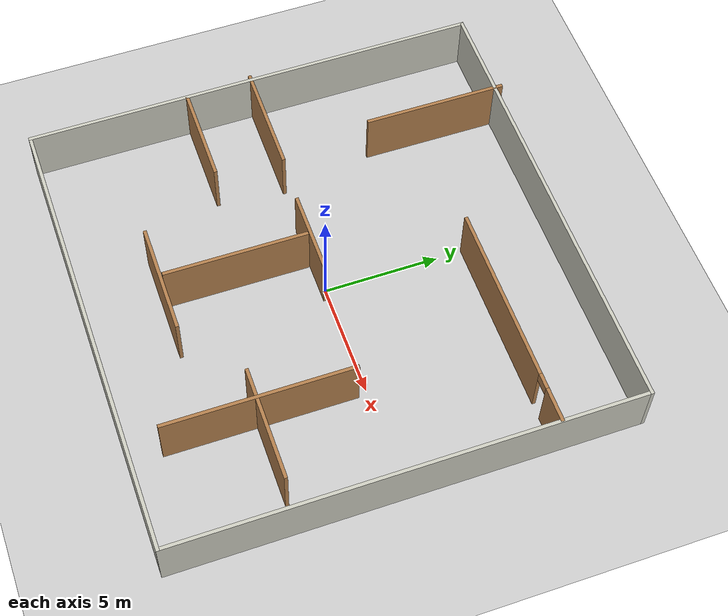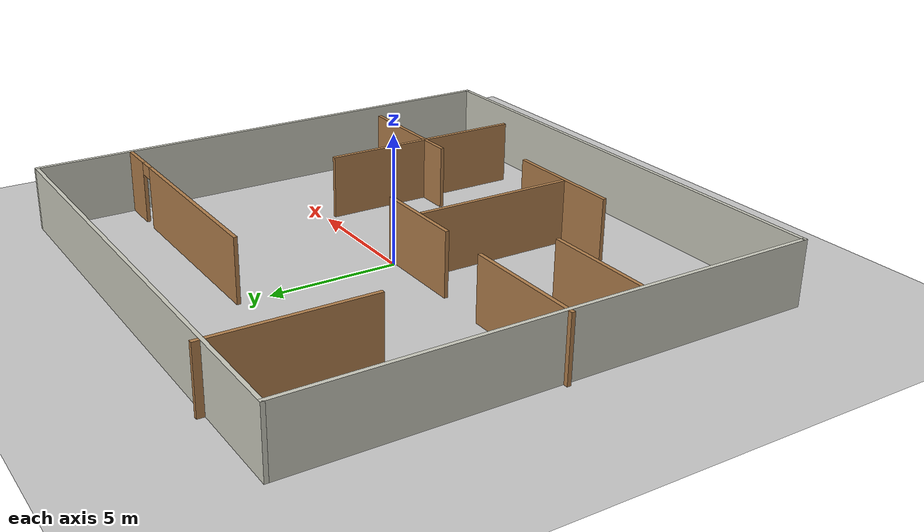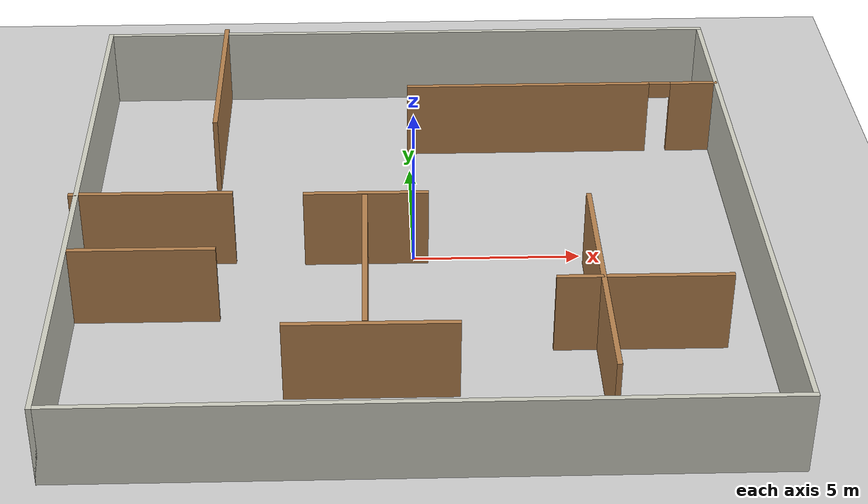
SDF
<sdf version="1.4">
<world name="default">
    <gravity>0 0 -9.8</gravity>

    <physics name="custom_physics_profile" type="ode" default="true">
      <ode>
        <solver>
          <type>quick</type>
          <iters>100</iters>
        </solver>
      </ode>
    </physics>

    <include>
        <uri>model://ground_plane</uri>
    </include>

    <include>
        <uri>model://Map</uri>
        <pose>0 0 0 0 0 0</pose>
    </include>
</world>
</sdf>

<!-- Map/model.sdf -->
<sdf version='1.6'>
  <model name='MAP'>
    <link name='Wall_19'>
      <pose frame=''>4.957 6.17289 0 0 -0 0</pose>
      <self_collide>0</self_collide>
      <enable_wind>0</enable_wind>
      <kinematic>0</kinematic>
      <visual name='Wall_19_Visual_0'>
        <pose frame=''>-1.09816 0 1.25 0 -0 0</pose>
        <geometry>
          <box>
            <size>7.80368 0.15 2.5</size>
          </box>
        </geometry>
        <material>
          <script>
            <uri>file://media/materials/scripts/gazebo.material</uri>
            <name>Gazebo/WoodFloor</name>
          </script>
          <ambient>1 1 1 1</ambient>
        </material>
        <meta>
          <layer>0</layer>
        </meta>
        <transparency>0</transparency>
        <cast_shadows>1</cast_shadows>
      </visual>
      <visual name='Wall_19_Visual_1'>
        <pose frame=''>4.24478 0 1.25 0 -0 0</pose>
        <geometry>
          <box>
            <size>1.51045 0.15 2.5</size>
          </box>
        </geometry>
        <material>
          <script>
            <uri>file://media/materials/scripts/gazebo.material</uri>
            <name>Gazebo/WoodFloor</name>
          </script>
          <ambient>1 1 1 1</ambient>
        </material>
        <meta>
          <layer>0</layer>
        </meta>
        <transparency>0</transparency>
        <cast_shadows>1</cast_shadows>
      </visual>
      <visual name='Wall_19_Visual_2'>
        <pose frame=''>3.14662 0 2.25 0 -0 0</pose>
        <geometry>
          <box>
            <size>0.685868 0.15 0.5</size>
          </box>
        </geometry>
        <material>
          <script>
            <uri>file://media/materials/scripts/gazebo.material</uri>
            <name>Gazebo/WoodFloor</name>
          </script>
          <ambient>1 1 1 1</ambient>
        </material>
        <meta>
          <layer>0</layer>
        </meta>
        <transparency>0</transparency>
        <cast_shadows>1</cast_shadows>
      </visual>
      <collision name='Wall_19_Collision_0'>
        <laser_retro>0</laser_retro>
        <max_contacts>10</max_contacts>
        <pose frame=''>-1.09816 0 1.25 0 -0 0</pose>
        <geometry>
          <box>
            <size>7.80368 0.15 2.5</size>
          </box>
        </geometry>
        <surface>
          <friction>
            <ode>
              <mu>1</mu>
              <mu2>1</mu2>
              <fdir1>0 0 0</fdir1>
              <slip1>0</slip1>
              <slip2>0</slip2>
            </ode>
            <torsional>
              <coefficient>1</coefficient>
              <patch_radius>0</patch_radius>
              <surface_radius>0</surface_radius>
              <use_patch_radius>1</use_patch_radius>
              <ode>
                <slip>0</slip>
              </ode>
            </torsional>
          </friction>
          <bounce>
            <restitution_coefficient>0</restitution_coefficient>
            <threshold>1e+06</threshold>
          </bounce>
          <contact>
            <collide_without_contact>0</collide_without_contact>
            <collide_without_contact_bitmask>1</collide_without_contact_bitmask>
            <collide_bitmask>1</collide_bitmask>
            <ode>
              <soft_cfm>0</soft_cfm>
              <soft_erp>0.2</soft_erp>
              <kp>1e+13</kp>
              <kd>1</kd>
              <max_vel>0.01</max_vel>
              <min_depth>0</min_depth>
            </ode>
            <bullet>
              <split_impulse>1</split_impulse>
              <split_impulse_penetration_threshold>-0.01</split_impulse_penetration_threshold>
              <soft_cfm>0</soft_cfm>
              <soft_erp>0.2</soft_erp>
              <kp>1e+13</kp>
              <kd>1</kd>
            </bullet>
          </contact>
        </surface>
      </collision>
      <collision name='Wall_19_Collision_1'>
        <laser_retro>0</laser_retro>
        <max_contacts>10</max_contacts>
        <pose frame=''>4.24478 0 1.25 0 -0 0</pose>
        <geometry>
          <box>
            <size>1.51045 0.15 2.5</size>
          </box>
        </geometry>
        <surface>
          <friction>
            <ode>
              <mu>1</mu>
              <mu2>1</mu2>
              <fdir1>0 0 0</fdir1>
              <slip1>0</slip1>
              <slip2>0</slip2>
            </ode>
            <torsional>
              <coefficient>1</coefficient>
              <patch_radius>0</patch_radius>
              <surface_radius>0</surface_radius>
              <use_patch_radius>1</use_patch_radius>
              <ode>
                <slip>0</slip>
              </ode>
            </torsional>
          </friction>
          <bounce>
            <restitution_coefficient>0</restitution_coefficient>
            <threshold>1e+06</threshold>
          </bounce>
          <contact>
            <collide_without_contact>0</collide_without_contact>
            <collide_without_contact_bitmask>1</collide_without_contact_bitmask>
            <collide_bitmask>1</collide_bitmask>
            <ode>
              <soft_cfm>0</soft_cfm>
              <soft_erp>0.2</soft_erp>
              <kp>1e+13</kp>
              <kd>1</kd>
              <max_vel>0.01</max_vel>
              <min_depth>0</min_depth>
            </ode>
            <bullet>
              <split_impulse>1</split_impulse>
              <split_impulse_penetration_threshold>-0.01</split_impulse_penetration_threshold>
              <soft_cfm>0</soft_cfm>
              <soft_erp>0.2</soft_erp>
              <kp>1e+13</kp>
              <kd>1</kd>
            </bullet>
          </contact>
        </surface>
      </collision>
      <collision name='Wall_19_Collision_2'>
        <laser_retro>0</laser_retro>
        <max_contacts>10</max_contacts>
        <pose frame=''>3.14662 0 2.25 0 -0 0</pose>
        <geometry>
          <box>
            <size>0.685868 0.15 0.5</size>
          </box>
        </geometry>
        <surface>
          <friction>
            <ode>
              <mu>1</mu>
              <mu2>1</mu2>
              <fdir1>0 0 0</fdir1>
              <slip1>0</slip1>
              <slip2>0</slip2>
            </ode>
            <torsional>
              <coefficient>1</coefficient>
              <patch_radius>0</patch_radius>
              <surface_radius>0</surface_radius>
              <use_patch_radius>1</use_patch_radius>
              <ode>
                <slip>0</slip>
              </ode>
            </torsional>
          </friction>
          <bounce>
            <restitution_coefficient>0</restitution_coefficient>
            <threshold>1e+06</threshold>
          </bounce>
          <contact>
            <collide_without_contact>0</collide_without_contact>
            <collide_without_contact_bitmask>1</collide_without_contact_bitmask>
            <collide_bitmask>1</collide_bitmask>
            <ode>
              <soft_cfm>0</soft_cfm>
              <soft_erp>0.2</soft_erp>
              <kp>1e+13</kp>
              <kd>1</kd>
              <max_vel>0.01</max_vel>
              <min_depth>0</min_depth>
            </ode>
            <bullet>
              <split_impulse>1</split_impulse>
              <split_impulse_penetration_threshold>-0.01</split_impulse_penetration_threshold>
              <soft_cfm>0</soft_cfm>
              <soft_erp>0.2</soft_erp>
              <kp>1e+13</kp>
              <kd>1</kd>
            </bullet>
          </contact>
        </surface>
      </collision>
    </link>
    <link name='Wall_6'>
      <pose frame=''>-9.925 0 0 0 0 -1.5708</pose>
      <self_collide>0</self_collide>
      <enable_wind>0</enable_wind>
      <kinematic>0</kinematic>
      <visual name='Wall_6_Visual'>
        <pose frame=''>0 0 1.25 0 -0 0</pose>
        <geometry>
          <box>
            <size>20 0.15 2.5</size>
          </box>
        </geometry>
        <material>
          <script>
            <uri>file://media/materials/scripts/gazebo.material</uri>
            <name>Gazebo/PaintedWall</name>
          </script>
          <ambient>1 1 1 1</ambient>
        </material>
        <meta>
          <layer>0</layer>
        </meta>
        <transparency>0</transparency>
        <cast_shadows>1</cast_shadows>
      </visual>
      <collision name='Wall_6_Collision'>
        <laser_retro>0</laser_retro>
        <max_contacts>10</max_contacts>
        <pose frame=''>0 0 1.25 0 -0 0</pose>
        <geometry>
          <box>
            <size>20 0.15 2.5</size>
          </box>
        </geometry>
        <surface>
          <friction>
            <ode>
              <mu>1</mu>
              <mu2>1</mu2>
              <fdir1>0 0 0</fdir1>
              <slip1>0</slip1>
              <slip2>0</slip2>
            </ode>
            <torsional>
              <coefficient>1</coefficient>
              <patch_radius>0</patch_radius>
              <surface_radius>0</surface_radius>
              <use_patch_radius>1</use_patch_radius>
              <ode>
                <slip>0</slip>
              </ode>
            </torsional>
          </friction>
          <bounce>
            <restitution_coefficient>0</restitution_coefficient>
            <threshold>1e+06</threshold>
          </bounce>
          <contact>
            <collide_without_contact>0</collide_without_contact>
            <collide_without_contact_bitmask>1</collide_without_contact_bitmask>
            <collide_bitmask>1</collide_bitmask>
            <ode>
              <soft_cfm>0</soft_cfm>
              <soft_erp>0.2</soft_erp>
              <kp>1e+13</kp>
              <kd>1</kd>
              <max_vel>0.01</max_vel>
              <min_depth>0</min_depth>
            </ode>
            <bullet>
              <split_impulse>1</split_impulse>
              <split_impulse_penetration_threshold>-0.01</split_impulse_penetration_threshold>
              <soft_cfm>0</soft_cfm>
              <soft_erp>0.2</soft_erp>
              <kp>1e+13</kp>
              <kd>1</kd>
            </bullet>
          </contact>
        </surface>
      </collision>
    </link>
    <link name='Wall_7'>
      <pose frame=''>0 -9.925 0 0 -0 0</pose>
      <self_collide>0</self_collide>
      <enable_wind>0</enable_wind>
      <kinematic>0</kinematic>
      <visual name='Wall_7_Visual'>
        <pose frame=''>0 0 1.25 0 -0 0</pose>
        <geometry>
          <box>
            <size>20 0.15 2.5</size>
          </box>
        </geometry>
        <material>
          <script>
            <uri>file://media/materials/scripts/gazebo.material</uri>
            <name>Gazebo/PaintedWall</name>
          </script>
          <ambient>1 1 1 1</ambient>
        </material>
        <meta>
          <layer>0</layer>
        </meta>
        <transparency>0</transparency>
        <cast_shadows>1</cast_shadows>
      </visual>
      <collision name='Wall_7_Collision'>
        <laser_retro>0</laser_retro>
        <max_contacts>10</max_contacts>
        <pose frame=''>0 0 1.25 0 -0 0</pose>
        <geometry>
          <box>
            <size>20 0.15 2.5</size>
          </box>
        </geometry>
        <surface>
          <friction>
            <ode>
              <mu>1</mu>
              <mu2>1</mu2>
              <fdir1>0 0 0</fdir1>
              <slip1>0</slip1>
              <slip2>0</slip2>
            </ode>
            <torsional>
              <coefficient>1</coefficient>
              <patch_radius>0</patch_radius>
              <surface_radius>0</surface_radius>
              <use_patch_radius>1</use_patch_radius>
              <ode>
                <slip>0</slip>
              </ode>
            </torsional>
          </friction>
          <bounce>
            <restitution_coefficient>0</restitution_coefficient>
            <threshold>1e+06</threshold>
          </bounce>
          <contact>
            <collide_without_contact>0</collide_without_contact>
            <collide_without_contact_bitmask>1</collide_without_contact_bitmask>
            <collide_bitmask>1</collide_bitmask>
            <ode>
              <soft_cfm>0</soft_cfm>
              <soft_erp>0.2</soft_erp>
              <kp>1e+13</kp>
              <kd>1</kd>
              <max_vel>0.01</max_vel>
              <min_depth>0</min_depth>
            </ode>
            <bullet>
              <split_impulse>1</split_impulse>
              <split_impulse_penetration_threshold>-0.01</split_impulse_penetration_threshold>
              <soft_cfm>0</soft_cfm>
              <soft_erp>0.2</soft_erp>
              <kp>1e+13</kp>
              <kd>1</kd>
            </bullet>
          </contact>
        </surface>
      </collision>
    </link>
    <link name='Wall_8'>
      <pose frame=''>9.925 0 0 0 -0 1.5708</pose>
      <self_collide>0</self_collide>
      <enable_wind>0</enable_wind>
      <kinematic>0</kinematic>
      <visual name='Wall_8_Visual'>
        <pose frame=''>0 0 1.25 0 -0 0</pose>
        <geometry>
          <box>
            <size>20 0.15 2.5</size>
          </box>
        </geometry>
        <material>
          <script>
            <uri>file://media/materials/scripts/gazebo.material</uri>
            <name>Gazebo/PaintedWall</name>
          </script>
          <ambient>1 1 1 1</ambient>
        </material>
        <meta>
          <layer>0</layer>
        </meta>
        <transparency>0</transparency>
        <cast_shadows>1</cast_shadows>
      </visual>
      <collision name='Wall_8_Collision'>
        <laser_retro>0</laser_retro>
        <max_contacts>10</max_contacts>
        <pose frame=''>0 0 1.25 0 -0 0</pose>
        <geometry>
          <box>
            <size>20 0.15 2.5</size>
          </box>
        </geometry>
        <surface>
          <friction>
            <ode>
              <mu>1</mu>
              <mu2>1</mu2>
              <fdir1>0 0 0</fdir1>
              <slip1>0</slip1>
              <slip2>0</slip2>
            </ode>
            <torsional>
              <coefficient>1</coefficient>
              <patch_radius>0</patch_radius>
              <surface_radius>0</surface_radius>
              <use_patch_radius>1</use_patch_radius>
              <ode>
                <slip>0</slip>
              </ode>
            </torsional>
          </friction>
          <bounce>
            <restitution_coefficient>0</restitution_coefficient>
            <threshold>1e+06</threshold>
          </bounce>
          <contact>
            <collide_without_contact>0</collide_without_contact>
            <collide_without_contact_bitmask>1</collide_without_contact_bitmask>
            <collide_bitmask>1</collide_bitmask>
            <ode>
              <soft_cfm>0</soft_cfm>
              <soft_erp>0.2</soft_erp>
              <kp>1e+13</kp>
              <kd>1</kd>
              <max_vel>0.01</max_vel>
              <min_depth>0</min_depth>
            </ode>
            <bullet>
              <split_impulse>1</split_impulse>
              <split_impulse_penetration_threshold>-0.01</split_impulse_penetration_threshold>
              <soft_cfm>0</soft_cfm>
              <soft_erp>0.2</soft_erp>
              <kp>1e+13</kp>
              <kd>1</kd>
            </bullet>
          </contact>
        </surface>
      </collision>
    </link>
    <link name='Wall_9'>
      <pose frame=''>0 9.925 0 0 -0 3.14159</pose>
      <self_collide>0</self_collide>
      <enable_wind>0</enable_wind>
      <kinematic>0</kinematic>
      <visual name='Wall_9_Visual'>
        <pose frame=''>0 0 1.25 0 -0 0</pose>
        <geometry>
          <box>
            <size>20 0.15 2.5</size>
          </box>
        </geometry>
        <material>
          <script>
            <uri>file://media/materials/scripts/gazebo.material</uri>
            <name>Gazebo/PaintedWall</name>
          </script>
          <ambient>1 1 1 1</ambient>
        </material>
        <meta>
          <layer>0</layer>
        </meta>
        <transparency>0</transparency>
        <cast_shadows>1</cast_shadows>
      </visual>
      <collision name='Wall_9_Collision'>
        <laser_retro>0</laser_retro>
        <max_contacts>10</max_contacts>
        <pose frame=''>0 0 1.25 0 -0 0</pose>
        <geometry>
          <box>
            <size>20 0.15 2.5</size>
          </box>
        </geometry>
        <surface>
          <friction>
            <ode>
              <mu>1</mu>
              <mu2>1</mu2>
              <fdir1>0 0 0</fdir1>
              <slip1>0</slip1>
              <slip2>0</slip2>
            </ode>
            <torsional>
              <coefficient>1</coefficient>
              <patch_radius>0</patch_radius>
              <surface_radius>0</surface_radius>
              <use_patch_radius>1</use_patch_radius>
              <ode>
                <slip>0</slip>
              </ode>
            </torsional>
          </friction>
          <bounce>
            <restitution_coefficient>0</restitution_coefficient>
            <threshold>1e+06</threshold>
          </bounce>
          <contact>
            <collide_without_contact>0</collide_without_contact>
            <collide_without_contact_bitmask>1</collide_without_contact_bitmask>
            <collide_bitmask>1</collide_bitmask>
            <ode>
              <soft_cfm>0</soft_cfm>
              <soft_erp>0.2</soft_erp>
              <kp>1e+13</kp>
              <kd>1</kd>
              <max_vel>0.01</max_vel>
              <min_depth>0</min_depth>
            </ode>
            <bullet>
              <split_impulse>1</split_impulse>
              <split_impulse_penetration_threshold>-0.01</split_impulse_penetration_threshold>
              <soft_cfm>0</soft_cfm>
              <soft_erp>0.2</soft_erp>
              <kp>1e+13</kp>
              <kd>1</kd>
            </bullet>
          </contact>
        </surface>
      </collision>
    </link>
    <link name='Wall_9_clone'>
      <pose frame=''>-6.06665 7.15165 0 0 -0 1.56484</pose>
      <self_collide>0</self_collide>
      <enable_wind>0</enable_wind>
      <kinematic>0</kinematic>
      <inertial>
        <inertia>
          <ixx>0</ixx>
          <ixy>0</ixy>
          <ixz>0</ixz>
          <iyy>0</iyy>
          <iyz>0</iyz>
          <izz>0</izz>
        </inertia>
        <mass>0</mass>
        <pose frame=''>0 0 0 0 -0 0</pose>
      </inertial>
      <visual name='Wall_9_Visual'>
        <pose frame=''>0 0 1.25 0 -0 0</pose>
        <geometry>
          <box>
            <size>6.24861 0.15 2.5</size>
          </box>
        </geometry>
        <material>
          <script>
            <uri>file://media/materials/scripts/gazebo.material</uri>
            <name>Gazebo/WoodFloor</name>
          </script>
          <ambient>1 1 1 1</ambient>
          <shader type='pixel'/>
        </material>
        <meta>
          <layer>0</layer>
        </meta>
        <transparency>0</transparency>
        <cast_shadows>1</cast_shadows>
      </visual>
      <collision name='Wall_9_Collision'>
        <laser_retro>0</laser_retro>
        <max_contacts>10</max_contacts>
        <pose frame=''>0 0 1.25 0 -0 0</pose>
        <geometry>
          <box>
            <size>6.24861 0.15 2.5</size>
          </box>
        </geometry>
        <surface>
          <friction>
            <ode>
              <mu>1</mu>
              <mu2>1</mu2>
              <fdir1>0 0 0</fdir1>
              <slip1>0</slip1>
              <slip2>0</slip2>
            </ode>
            <torsional>
              <coefficient>1</coefficient>
              <patch_radius>0</patch_radius>
              <surface_radius>0</surface_radius>
              <use_patch_radius>1</use_patch_radius>
              <ode>
                <slip>0</slip>
              </ode>
            </torsional>
          </friction>
          <bounce>
            <restitution_coefficient>0</restitution_coefficient>
            <threshold>1e+06</threshold>
          </bounce>
          <contact>
            <collide_without_contact>0</collide_without_contact>
            <collide_without_contact_bitmask>1</collide_without_contact_bitmask>
            <collide_bitmask>1</collide_bitmask>
            <ode>
              <soft_cfm>0</soft_cfm>
              <soft_erp>0.2</soft_erp>
              <kp>1e+13</kp>
              <kd>1</kd>
              <max_vel>0.01</max_vel>
              <min_depth>0</min_depth>
            </ode>
            <bullet>
              <split_impulse>1</split_impulse>
              <split_impulse_penetration_threshold>-0.01</split_impulse_penetration_threshold>
              <soft_cfm>0</soft_cfm>
              <soft_erp>0.2</soft_erp>
              <kp>1e+13</kp>
              <kd>1</kd>
            </bullet>
          </contact>
        </surface>
      </collision>
    </link>
    <link name='Wall_9_clone_clone'>
      <pose frame=''>-7.74733 -0.023639 0 0 0 -0.003058</pose>
      <self_collide>0</self_collide>
      <enable_wind>0</enable_wind>
      <kinematic>0</kinematic>
      <inertial>
        <inertia>
          <ixx>0</ixx>
          <ixy>0</ixy>
          <ixz>0</ixz>
          <iyy>0</iyy>
          <iyz>0</iyz>
          <izz>0</izz>
        </inertia>
        <mass>0</mass>
        <pose frame=''>0 0 0 0 -0 0</pose>
      </inertial>
      <visual name='Wall_9_Visual'>
        <pose frame=''>0 0 1.25 0 -0 0</pose>
        <geometry>
          <box>
            <size>4.8352 0.15 2.5</size>
          </box>
        </geometry>
        <material>
          <script>
            <uri>file://media/materials/scripts/gazebo.material</uri>
            <name>Gazebo/WoodFloor</name>
          </script>
          <ambient>1 1 1 1</ambient>
          <shader type='pixel'/>
        </material>
        <meta>
          <layer>0</layer>
        </meta>
        <transparency>0</transparency>
        <cast_shadows>1</cast_shadows>
      </visual>
      <collision name='Wall_9_Collision'>
        <laser_retro>0</laser_retro>
        <max_contacts>10</max_contacts>
        <pose frame=''>0 0 1.25 0 -0 0</pose>
        <geometry>
          <box>
            <size>4.8352 0.15 2.5</size>
          </box>
        </geometry>
        <surface>
          <friction>
            <ode>
              <mu>1</mu>
              <mu2>1</mu2>
              <fdir1>0 0 0</fdir1>
              <slip1>0</slip1>
              <slip2>0</slip2>
            </ode>
            <torsional>
              <coefficient>1</coefficient>
              <patch_radius>0</patch_radius>
              <surface_radius>0</surface_radius>
              <use_patch_radius>1</use_patch_radius>
              <ode>
                <slip>0</slip>
              </ode>
            </torsional>
          </friction>
          <bounce>
            <restitution_coefficient>0</restitution_coefficient>
            <threshold>1e+06</threshold>
          </bounce>
          <contact>
            <collide_without_contact>0</collide_without_contact>
            <collide_without_contact_bitmask>1</collide_without_contact_bitmask>
            <collide_bitmask>1</collide_bitmask>
            <ode>
              <soft_cfm>0</soft_cfm>
              <soft_erp>0.2</soft_erp>
              <kp>1e+13</kp>
              <kd>1</kd>
              <max_vel>0.01</max_vel>
              <min_depth>0</min_depth>
            </ode>
            <bullet>
              <split_impulse>1</split_impulse>
              <split_impulse_penetration_threshold>-0.01</split_impulse_penetration_threshold>
              <soft_cfm>0</soft_cfm>
              <soft_erp>0.2</soft_erp>
              <kp>1e+13</kp>
              <kd>1</kd>
            </bullet>
          </contact>
        </surface>
      </collision>
    </link>
    <link name='Wall_9_clone_clone_0'>
      <pose frame=''>-1.46479 -3.36294 0 0 -0 1.56484</pose>
      <self_collide>0</self_collide>
      <enable_wind>0</enable_wind>
      <kinematic>0</kinematic>
      <inertial>
        <inertia>
          <ixx>0</ixx>
          <ixy>0</ixy>
          <ixz>0</ixz>
          <iyy>0</iyy>
          <iyz>0</iyz>
          <izz>0</izz>
        </inertia>
        <mass>0</mass>
        <pose frame=''>0 0 0 0 -0 0</pose>
      </inertial>
      <visual name='Wall_9_Visual'>
        <pose frame=''>0 0 1.25 0 -0 0</pose>
        <geometry>
          <box>
            <size>6.24861 0.15 2.5</size>
          </box>
        </geometry>
        <material>
          <script>
            <uri>file://media/materials/scripts/gazebo.material</uri>
            <name>Gazebo/WoodFloor</name>
          </script>
          <ambient>1 1 1 1</ambient>
          <shader type='pixel'/>
        </material>
        <meta>
          <layer>0</layer>
        </meta>
        <transparency>0</transparency>
        <cast_shadows>1</cast_shadows>
      </visual>
      <collision name='Wall_9_Collision'>
        <laser_retro>0</laser_retro>
        <max_contacts>10</max_contacts>
        <pose frame=''>0 0 1.25 0 -0 0</pose>
        <geometry>
          <box>
            <size>6.24861 0.15 2.5</size>
          </box>
        </geometry>
        <surface>
          <friction>
            <ode>
              <mu>1</mu>
              <mu2>1</mu2>
              <fdir1>0 0 0</fdir1>
              <slip1>0</slip1>
              <slip2>0</slip2>
            </ode>
            <torsional>
              <coefficient>1</coefficient>
              <patch_radius>0</patch_radius>
              <surface_radius>0</surface_radius>
              <use_patch_radius>1</use_patch_radius>
              <ode>
                <slip>0</slip>
              </ode>
            </torsional>
          </friction>
          <bounce>
            <restitution_coefficient>0</restitution_coefficient>
            <threshold>1e+06</threshold>
          </bounce>
          <contact>
            <collide_without_contact>0</collide_without_contact>
            <collide_without_contact_bitmask>1</collide_without_contact_bitmask>
            <collide_bitmask>1</collide_bitmask>
            <ode>
              <soft_cfm>0</soft_cfm>
              <soft_erp>0.2</soft_erp>
              <kp>1e+13</kp>
              <kd>1</kd>
              <max_vel>0.01</max_vel>
              <min_depth>0</min_depth>
            </ode>
            <bullet>
              <split_impulse>1</split_impulse>
              <split_impulse_penetration_threshold>-0.01</split_impulse_penetration_threshold>
              <soft_cfm>0</soft_cfm>
              <soft_erp>0.2</soft_erp>
              <kp>1e+13</kp>
              <kd>1</kd>
            </bullet>
          </contact>
        </surface>
      </collision>
    </link>
    <link name='Wall_9_clone_clone_clone'>
      <pose frame=''>-7.82145 -2.94166 0 0 0 -0.003058</pose>
      <self_collide>0</self_collide>
      <enable_wind>0</enable_wind>
      <kinematic>0</kinematic>
      <inertial>
        <inertia>
          <ixx>0</ixx>
          <ixy>0</ixy>
          <ixz>0</ixz>
          <iyy>0</iyy>
          <iyz>0</iyz>
          <izz>0</izz>
        </inertia>
        <mass>0</mass>
        <pose frame=''>0 0 0 0 -0 0</pose>
      </inertial>
      <visual name='Wall_9_Visual'>
        <pose frame=''>0 0 1.25 0 -0 0</pose>
        <geometry>
          <box>
            <size>4.32704 0.15 2.5</size>
          </box>
        </geometry>
        <material>
          <script>
            <uri>file://media/materials/scripts/gazebo.material</uri>
            <name>Gazebo/WoodFloor</name>
          </script>
          <ambient>1 1 1 1</ambient>
          <shader type='pixel'/>
        </material>
        <meta>
          <layer>0</layer>
        </meta>
        <transparency>0</transparency>
        <cast_shadows>1</cast_shadows>
      </visual>
      <collision name='Wall_9_Collision'>
        <laser_retro>0</laser_retro>
        <max_contacts>10</max_contacts>
        <pose frame=''>0 0 1.25 0 -0 0</pose>
        <geometry>
          <box>
            <size>4.32704 0.15 2.5</size>
          </box>
        </geometry>
        <surface>
          <friction>
            <ode>
              <mu>1</mu>
              <mu2>1</mu2>
              <fdir1>0 0 0</fdir1>
              <slip1>0</slip1>
              <slip2>0</slip2>
            </ode>
            <torsional>
              <coefficient>1</coefficient>
              <patch_radius>0</patch_radius>
              <surface_radius>0</surface_radius>
              <use_patch_radius>1</use_patch_radius>
              <ode>
                <slip>0</slip>
              </ode>
            </torsional>
          </friction>
          <bounce>
            <restitution_coefficient>0</restitution_coefficient>
            <threshold>1e+06</threshold>
          </bounce>
          <contact>
            <collide_without_contact>0</collide_without_contact>
            <collide_without_contact_bitmask>1</collide_without_contact_bitmask>
            <collide_bitmask>1</collide_bitmask>
            <ode>
              <soft_cfm>0</soft_cfm>
              <soft_erp>0.2</soft_erp>
              <kp>1e+13</kp>
              <kd>1</kd>
              <max_vel>0.01</max_vel>
              <min_depth>0</min_depth>
            </ode>
            <bullet>
              <split_impulse>1</split_impulse>
              <split_impulse_penetration_threshold>-0.01</split_impulse_penetration_threshold>
              <soft_cfm>0</soft_cfm>
              <soft_erp>0.2</soft_erp>
              <kp>1e+13</kp>
              <kd>1</kd>
            </bullet>
          </contact>
        </surface>
      </collision>
    </link>
    <link name='Wall_9_clone_clone_clone_0'>
      <pose frame=''>5.11958 -4.46102 0 0 0 -1.57481</pose>
      <self_collide>0</self_collide>
      <enable_wind>0</enable_wind>
      <kinematic>0</kinematic>
      <inertial>
        <inertia>
          <ixx>0</ixx>
          <ixy>0</ixy>
          <ixz>0</ixz>
          <iyy>0</iyy>
          <iyz>0</iyz>
          <izz>0</izz>
        </inertia>
        <mass>0</mass>
        <pose frame=''>0 0 0 0 -0 0</pose>
      </inertial>
      <visual name='Wall_9_Visual'>
        <pose frame=''>0 0 1.25 0 -0 0</pose>
        <geometry>
          <box>
            <size>8.18145 0.15 2.5</size>
          </box>
        </geometry>
        <material>
          <script>
            <uri>file://media/materials/scripts/gazebo.material</uri>
            <name>Gazebo/WoodFloor</name>
          </script>
          <ambient>1 1 1 1</ambient>
          <shader type='pixel'/>
        </material>
        <meta>
          <layer>0</layer>
        </meta>
        <transparency>0</transparency>
        <cast_shadows>1</cast_shadows>
      </visual>
      <collision name='Wall_9_Collision'>
        <laser_retro>0</laser_retro>
        <max_contacts>10</max_contacts>
        <pose frame=''>0 0 1.25 0 -0 0</pose>
        <geometry>
          <box>
            <size>8.18145 0.15 2.5</size>
          </box>
        </geometry>
        <surface>
          <friction>
            <ode>
              <mu>1</mu>
              <mu2>1</mu2>
              <fdir1>0 0 0</fdir1>
              <slip1>0</slip1>
              <slip2>0</slip2>
            </ode>
            <torsional>
              <coefficient>1</coefficient>
              <patch_radius>0</patch_radius>
              <surface_radius>0</surface_radius>
              <use_patch_radius>1</use_patch_radius>
              <ode>
                <slip>0</slip>
              </ode>
            </torsional>
          </friction>
          <bounce>
            <restitution_coefficient>0</restitution_coefficient>
            <threshold>1e+06</threshold>
          </bounce>
          <contact>
            <collide_without_contact>0</collide_without_contact>
            <collide_without_contact_bitmask>1</collide_without_contact_bitmask>
            <collide_bitmask>1</collide_bitmask>
            <ode>
              <soft_cfm>0</soft_cfm>
              <soft_erp>0.2</soft_erp>
              <kp>1e+13</kp>
              <kd>1</kd>
              <max_vel>0.01</max_vel>
              <min_depth>0</min_depth>
            </ode>
            <bullet>
              <split_impulse>1</split_impulse>
              <split_impulse_penetration_threshold>-0.01</split_impulse_penetration_threshold>
              <soft_cfm>0</soft_cfm>
              <soft_erp>0.2</soft_erp>
              <kp>1e+13</kp>
              <kd>1</kd>
            </bullet>
          </contact>
        </surface>
      </collision>
    </link>
    <link name='Wall_9_clone_clone_clone_1'>
      <pose frame=''>6.28665 -4.58588 -0 0 0 -0.003058</pose>
      <self_collide>0</self_collide>
      <enable_wind>0</enable_wind>
      <kinematic>0</kinematic>
      <inertial>
        <inertia>
          <ixx>0</ixx>
          <ixy>0</ixy>
          <ixz>0</ixz>
          <iyy>0</iyy>
          <iyz>0</iyz>
          <izz>0</izz>
        </inertia>
        <mass>0</mass>
        <pose frame=''>0 0 0 0 -0 0</pose>
      </inertial>
      <visual name='Wall_9_Visual'>
        <pose frame=''>0 0 1.25 0 -0 0</pose>
        <geometry>
          <box>
            <size>4.94534 0.15 2.5</size>
          </box>
        </geometry>
        <material>
          <script>
            <uri>file://media/materials/scripts/gazebo.material</uri>
            <name>Gazebo/WoodFloor</name>
          </script>
          <ambient>1 1 1 1</ambient>
          <shader type='pixel'/>
        </material>
        <meta>
          <layer>0</layer>
        </meta>
        <transparency>0</transparency>
        <cast_shadows>1</cast_shadows>
      </visual>
      <collision name='Wall_9_Collision'>
        <laser_retro>0</laser_retro>
        <max_contacts>10</max_contacts>
        <pose frame=''>0 0 1.25 0 -0 0</pose>
        <geometry>
          <box>
            <size>4.94534 0.15 2.5</size>
          </box>
        </geometry>
        <surface>
          <friction>
            <ode>
              <mu>1</mu>
              <mu2>1</mu2>
              <fdir1>0 0 0</fdir1>
              <slip1>0</slip1>
              <slip2>0</slip2>
            </ode>
            <torsional>
              <coefficient>1</coefficient>
              <patch_radius>0</patch_radius>
              <surface_radius>0</surface_radius>
              <use_patch_radius>1</use_patch_radius>
              <ode>
                <slip>0</slip>
              </ode>
            </torsional>
          </friction>
          <bounce>
            <restitution_coefficient>0</restitution_coefficient>
            <threshold>1e+06</threshold>
          </bounce>
          <contact>
            <collide_without_contact>0</collide_without_contact>
            <collide_without_contact_bitmask>1</collide_without_contact_bitmask>
            <collide_bitmask>1</collide_bitmask>
            <ode>
              <soft_cfm>0</soft_cfm>
              <soft_erp>0.2</soft_erp>
              <kp>1e+13</kp>
              <kd>1</kd>
              <max_vel>0.01</max_vel>
              <min_depth>0</min_depth>
            </ode>
            <bullet>
              <split_impulse>1</split_impulse>
              <split_impulse_penetration_threshold>-0.01</split_impulse_penetration_threshold>
              <soft_cfm>0</soft_cfm>
              <soft_erp>0.2</soft_erp>
              <kp>1e+13</kp>
              <kd>1</kd>
            </bullet>
          </contact>
        </surface>
      </collision>
    </link>
    <link name='Wall_9_clone_clone_clone_2'>
      <pose frame=''>-1.31918 -6.59141 0 0 0 -0.003058</pose>
      <self_collide>0</self_collide>
      <enable_wind>0</enable_wind>
      <kinematic>0</kinematic>
      <inertial>
        <inertia>
          <ixx>0</ixx>
          <ixy>0</ixy>
          <ixz>0</ixz>
          <iyy>0</iyy>
          <iyz>0</iyz>
          <izz>0</izz>
        </inertia>
        <mass>0</mass>
        <pose frame=''>0 0 0 0 -0 0</pose>
      </inertial>
      <visual name='Wall_9_Visual'>
        <pose frame=''>0 0 1.25 0 -0 0</pose>
        <geometry>
          <box>
            <size>4.8352 0.15 2.5</size>
          </box>
        </geometry>
        <material>
          <script>
            <uri>file://media/materials/scripts/gazebo.material</uri>
            <name>Gazebo/WoodFloor</name>
          </script>
          <ambient>1 1 1 1</ambient>
          <shader type='pixel'/>
        </material>
        <meta>
          <layer>0</layer>
        </meta>
        <transparency>0</transparency>
        <cast_shadows>1</cast_shadows>
      </visual>
      <collision name='Wall_9_Collision'>
        <laser_retro>0</laser_retro>
        <max_contacts>10</max_contacts>
        <pose frame=''>0 0 1.25 0 -0 0</pose>
        <geometry>
          <box>
            <size>4.8352 0.15 2.5</size>
          </box>
        </geometry>
        <surface>
          <friction>
            <ode>
              <mu>1</mu>
              <mu2>1</mu2>
              <fdir1>0 0 0</fdir1>
              <slip1>0</slip1>
              <slip2>0</slip2>
            </ode>
            <torsional>
              <coefficient>1</coefficient>
              <patch_radius>0</patch_radius>
              <surface_radius>0</surface_radius>
              <use_patch_radius>1</use_patch_radius>
              <ode>
                <slip>0</slip>
              </ode>
            </torsional>
          </friction>
          <bounce>
            <restitution_coefficient>0</restitution_coefficient>
            <threshold>1e+06</threshold>
          </bounce>
          <contact>
            <collide_without_contact>0</collide_without_contact>
            <collide_without_contact_bitmask>1</collide_without_contact_bitmask>
            <collide_bitmask>1</collide_bitmask>
            <ode>
              <soft_cfm>0</soft_cfm>
              <soft_erp>0.2</soft_erp>
              <kp>1e+13</kp>
              <kd>1</kd>
              <max_vel>0.01</max_vel>
              <min_depth>0</min_depth>
            </ode>
            <bullet>
              <split_impulse>1</split_impulse>
              <split_impulse_penetration_threshold>-0.01</split_impulse_penetration_threshold>
              <soft_cfm>0</soft_cfm>
              <soft_erp>0.2</soft_erp>
              <kp>1e+13</kp>
              <kd>1</kd>
            </bullet>
          </contact>
        </surface>
      </collision>
    </link>
    <link name='Wall_9_clone_clone_clone_3'>
      <pose frame=''>-1.41594 -0.148677 0 0 0 -0.003058</pose>
      <self_collide>0</self_collide>
      <enable_wind>0</enable_wind>
      <kinematic>0</kinematic>
      <inertial>
        <inertia>
          <ixx>0</ixx>
          <ixy>0</ixy>
          <ixz>0</ixz>
          <iyy>0</iyy>
          <iyz>0</iyz>
          <izz>0</izz>
        </inertia>
        <mass>0</mass>
        <pose frame=''>0 0 0 0 -0 0</pose>
      </inertial>
      <visual name='Wall_9_Visual'>
        <pose frame=''>0 0 1.25 0 -0 0</pose>
        <geometry>
          <box>
            <size>3.69582 0.15 2.5</size>
          </box>
        </geometry>
        <material>
          <script>
            <uri>file://media/materials/scripts/gazebo.material</uri>
            <name>Gazebo/WoodFloor</name>
          </script>
          <ambient>1 1 1 1</ambient>
          <shader type='pixel'/>
        </material>
        <meta>
          <layer>0</layer>
        </meta>
        <transparency>0</transparency>
        <cast_shadows>1</cast_shadows>
      </visual>
      <collision name='Wall_9_Collision'>
        <laser_retro>0</laser_retro>
        <max_contacts>10</max_contacts>
        <pose frame=''>0 0 1.25 0 -0 0</pose>
        <geometry>
          <box>
            <size>3.69582 0.15 2.5</size>
          </box>
        </geometry>
        <surface>
          <friction>
            <ode>
              <mu>1</mu>
              <mu2>1</mu2>
              <fdir1>0 0 0</fdir1>
              <slip1>0</slip1>
              <slip2>0</slip2>
            </ode>
            <torsional>
              <coefficient>1</coefficient>
              <patch_radius>0</patch_radius>
              <surface_radius>0</surface_radius>
              <use_patch_radius>1</use_patch_radius>
              <ode>
                <slip>0</slip>
              </ode>
            </torsional>
          </friction>
          <bounce>
            <restitution_coefficient>0</restitution_coefficient>
            <threshold>1e+06</threshold>
          </bounce>
          <contact>
            <collide_without_contact>0</collide_without_contact>
            <collide_without_contact_bitmask>1</collide_without_contact_bitmask>
            <collide_bitmask>1</collide_bitmask>
            <ode>
              <soft_cfm>0</soft_cfm>
              <soft_erp>0.2</soft_erp>
              <kp>1e+13</kp>
              <kd>1</kd>
              <max_vel>0.01</max_vel>
              <min_depth>0</min_depth>
            </ode>
            <bullet>
              <split_impulse>1</split_impulse>
              <split_impulse_penetration_threshold>-0.01</split_impulse_penetration_threshold>
              <soft_cfm>0</soft_cfm>
              <soft_erp>0.2</soft_erp>
              <kp>1e+13</kp>
              <kd>1</kd>
            </bullet>
          </contact>
        </surface>
      </collision>
    </link>
    <static>1</static>
    <allow_auto_disable>1</allow_auto_disable>
  </model>
</sdf>
